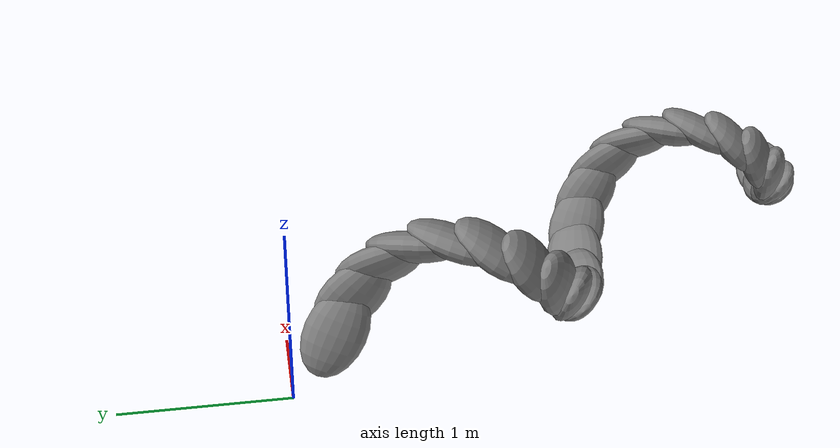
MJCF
<mujoco><compiler angle="radian"/><option timestep=".002" integrator="Euler" density="1.225" viscosity=".013" wind=".4 -.3 .2"><flag constraint="disable"/></option><worldbody><body pos=".15 -.07 .2" quat=".9 .1 -.2 .05"><joint axis="1 2 -3" pos=".1 0 -.05" armature=".03" damping=".2" stiffness=".4"/><inertial pos=".07 -.02 .11" mass="2.3" diaginertia=".21 .32 .43" quat=".8 .2 -.3 .1"/><geom type="ellipsoid" size=".1 .2 .3" fluidshape="ellipsoid" fluidcoef="1 .5 1.5 1 .7" pos=".12 -.2 .1" quat=".9 .1 .2 -.1"/><body pos=".15 -.07 .2" quat=".9 .1 -.2 .05"><joint axis="1 2 -3" pos=".1 0 -.05" armature=".03" damping=".2" stiffness=".4"/><inertial pos=".07 -.02 .11" mass="2.3" diaginertia=".21 .32 .43" quat=".8 .2 -.3 .1"/><geom type="ellipsoid" size=".1 .2 .3" fluidshape="ellipsoid" fluidcoef="1 .5 1.5 1 .7" pos=".12 -.2 .1" quat=".9 .1 .2 -.1"/><body pos=".15 -.07 .2" quat=".9 .1 -.2 .05"><joint axis="1 2 -3" pos=".1 0 -.05" armature=".03" damping=".2" stiffness=".4"/><inertial pos=".07 -.02 .11" mass="2.3" diaginertia=".21 .32 .43" quat=".8 .2 -.3 .1"/><geom type="ellipsoid" size=".1 .2 .3" fluidshape="ellipsoid" fluidcoef="1 .5 1.5 1 .7" pos=".12 -.2 .1" quat=".9 .1 .2 -.1"/><body pos=".15 -.07 .2" quat=".9 .1 -.2 .05"><joint axis="1 2 -3" pos=".1 0 -.05" armature=".03" damping=".2" stiffness=".4"/><inertial pos=".07 -.02 .11" mass="2.3" diaginertia=".21 .32 .43" quat=".8 .2 -.3 .1"/><geom type="ellipsoid" size=".1 .2 .3" fluidshape="ellipsoid" fluidcoef="1 .5 1.5 1 .7" pos=".12 -.2 .1" quat=".9 .1 .2 -.1"/><body pos=".15 -.07 .2" quat=".9 .1 -.2 .05"><joint axis="1 2 -3" pos=".1 0 -.05" armature=".03" damping=".2" stiffness=".4"/><inertial pos=".07 -.02 .11" mass="2.3" diaginertia=".21 .32 .43" quat=".8 .2 -.3 .1"/><geom type="ellipsoid" size=".1 .2 .3" fluidshape="ellipsoid" fluidcoef="1 .5 1.5 1 .7" pos=".12 -.2 .1" quat=".9 .1 .2 -.1"/><body pos=".15 -.07 .2" quat=".9 .1 -.2 .05"><joint axis="1 2 -3" pos=".1 0 -.05" armature=".03" damping=".2" stiffness=".4"/><inertial pos=".07 -.02 .11" mass="2.3" diaginertia=".21 .32 .43" quat=".8 .2 -.3 .1"/><geom type="ellipsoid" size=".1 .2 .3" fluidshape="ellipsoid" fluidcoef="1 .5 1.5 1 .7" pos=".12 -.2 .1" quat=".9 .1 .2 -.1"/><body pos=".15 -.07 .2" quat=".9 .1 -.2 .05"><joint axis="1 2 -3" pos=".1 0 -.05" armature=".03" damping=".2" stiffness=".4"/><inertial pos=".07 -.02 .11" mass="2.3" diaginertia=".21 .32 .43" quat=".8 .2 -.3 .1"/><geom type="ellipsoid" size=".1 .2 .3" fluidshape="ellipsoid" fluidcoef="1 .5 1.5 1 .7" pos=".12 -.2 .1" quat=".9 .1 .2 -.1"/><body pos=".15 -.07 .2" quat=".9 .1 -.2 .05"><joint axis="1 2 -3" pos=".1 0 -.05" armature=".03" damping=".2" stiffness=".4"/><inertial pos=".07 -.02 .11" mass="2.3" diaginertia=".21 .32 .43" quat=".8 .2 -.3 .1"/><geom type="ellipsoid" size=".1 .2 .3" fluidshape="ellipsoid" fluidcoef="1 .5 1.5 1 .7" pos=".12 -.2 .1" quat=".9 .1 .2 -.1"/><body pos=".15 -.07 .2" quat=".9 .1 -.2 .05"><joint axis="1 2 -3" pos=".1 0 -.05" armature=".03" damping=".2" stiffness=".4"/><inertial pos=".07 -.02 .11" mass="2.3" diaginertia=".21 .32 .43" quat=".8 .2 -.3 .1"/><geom type="ellipsoid" size=".1 .2 .3" fluidshape="ellipsoid" fluidcoef="1 .5 1.5 1 .7" pos=".12 -.2 .1" quat=".9 .1 .2 -.1"/><body pos=".15 -.07 .2" quat=".9 .1 -.2 .05"><joint axis="1 2 -3" pos=".1 0 -.05" armature=".03" damping=".2" stiffness=".4"/><inertial pos=".07 -.02 .11" mass="2.3" diaginertia=".21 .32 .43" quat=".8 .2 -.3 .1"/><geom type="ellipsoid" size=".1 .2 .3" fluidshape="ellipsoid" fluidcoef="1 .5 1.5 1 .7" pos=".12 -.2 .1" quat=".9 .1 .2 -.1"/><body pos=".15 -.07 .2" quat=".9 .1 -.2 .05"><joint axis="1 2 -3" pos=".1 0 -.05" armature=".03" damping=".2" stiffness=".4"/><inertial pos=".07 -.02 .11" mass="2.3" diaginertia=".21 .32 .43" quat=".8 .2 -.3 .1"/><geom type="ellipsoid" size=".1 .2 .3" fluidshape="ellipsoid" fluidcoef="1 .5 1.5 1 .7" pos=".12 -.2 .1" quat=".9 .1 .2 -.1"/><body pos=".15 -.07 .2" quat=".9 .1 -.2 .05"><joint axis="1 2 -3" pos=".1 0 -.05" armature=".03" damping=".2" stiffness=".4"/><inertial pos=".07 -.02 .11" mass="2.3" diaginertia=".21 .32 .43" quat=".8 .2 -.3 .1"/><geom type="ellipsoid" size=".1 .2 .3" fluidshape="ellipsoid" fluidcoef="1 .5 1.5 1 .7" pos=".12 -.2 .1" quat=".9 .1 .2 -.1"/><body pos=".15 -.07 .2" quat=".9 .1 -.2 .05"><joint axis="1 2 -3" pos=".1 0 -.05" armature=".03" damping=".2" stiffness=".4"/><inertial pos=".07 -.02 .11" mass="2.3" diaginertia=".21 .32 .43" quat=".8 .2 -.3 .1"/><geom type="ellipsoid" size=".1 .2 .3" fluidshape="ellipsoid" fluidcoef="1 .5 1.5 1 .7" pos=".12 -.2 .1" quat=".9 .1 .2 -.1"/><body pos=".15 -.07 .2" quat=".9 .1 -.2 .05"><joint axis="1 2 -3" pos=".1 0 -.05" armature=".03" damping=".2" stiffness=".4"/><inertial pos=".07 -.02 .11" mass="2.3" diaginertia=".21 .32 .43" quat=".8 .2 -.3 .1"/><geom type="ellipsoid" size=".1 .2 .3" fluidshape="ellipsoid" fluidcoef="1 .5 1.5 1 .7" pos=".12 -.2 .1" quat=".9 .1 .2 -.1"/><body pos=".15 -.07 .2" quat=".9 .1 -.2 .05"><joint axis="1 2 -3" pos=".1 0 -.05" armature=".03" damping=".2" stiffness=".4"/><inertial pos=".07 -.02 .11" mass="2.3" diaginertia=".21 .32 .43" quat=".8 .2 -.3 .1"/><geom type="ellipsoid" size=".1 .2 .3" fluidshape="ellipsoid" fluidcoef="1 .5 1.5 1 .7" pos=".12 -.2 .1" quat=".9 .1 .2 -.1"/><body pos=".15 -.07 .2" quat=".9 .1 -.2 .05"><joint axis="1 2 -3" pos=".1 0 -.05" armature=".03" damping=".2" stiffness=".4"/><inertial pos=".07 -.02 .11" mass="2.3" diaginertia=".21 .32 .43" quat=".8 .2 -.3 .1"/><geom type="ellipsoid" size=".1 .2 .3" fluidshape="ellipsoid" fluidcoef="1 .5 1.5 1 .7" pos=".12 -.2 .1" quat=".9 .1 .2 -.1"/><body pos=".15 -.07 .2" quat=".9 .1 -.2 .05"><joint axis="1 2 -3" pos=".1 0 -.05" armature=".03" damping=".2" stiffness=".4"/><inertial pos=".07 -.02 .11" mass="2.3" diaginertia=".21 .32 .43" quat=".8 .2 -.3 .1"/><geom type="ellipsoid" size=".1 .2 .3" fluidshape="ellipsoid" fluidcoef="1 .5 1.5 1 .7" pos=".12 -.2 .1" quat=".9 .1 .2 -.1"/><body pos=".15 -.07 .2" quat=".9 .1 -.2 .05"><joint axis="1 2 -3" pos=".1 0 -.05" armature=".03" damping=".2" stiffness=".4"/><inertial pos=".07 -.02 .11" mass="2.3" diaginertia=".21 .32 .43" quat=".8 .2 -.3 .1"/><geom type="ellipsoid" size=".1 .2 .3" fluidshape="ellipsoid" fluidcoef="1 .5 1.5 1 .7" pos=".12 -.2 .1" quat=".9 .1 .2 -.1"/><body pos=".15 -.07 .2" quat=".9 .1 -.2 .05"><joint axis="1 2 -3" pos=".1 0 -.05" armature=".03" damping=".2" stiffness=".4"/><inertial pos=".07 -.02 .11" mass="2.3" diaginertia=".21 .32 .43" quat=".8 .2 -.3 .1"/><geom type="ellipsoid" size=".1 .2 .3" fluidshape="ellipsoid" fluidcoef="1 .5 1.5 1 .7" pos=".12 -.2 .1" quat=".9 .1 .2 -.1"/><body pos=".15 -.07 .2" quat=".9 .1 -.2 .05"><joint axis="1 2 -3" pos=".1 0 -.05" armature=".03" damping=".2" stiffness=".4"/><inertial pos=".07 -.02 .11" mass="2.3" diaginertia=".21 .32 .43" quat=".8 .2 -.3 .1"/><geom type="ellipsoid" size=".1 .2 .3" fluidshape="ellipsoid" fluidcoef="1 .5 1.5 1 .7" pos=".12 -.2 .1" quat=".9 .1 .2 -.1"/><body pos=".15 -.07 .2" quat=".9 .1 -.2 .05"><joint axis="1 2 -3" pos=".1 0 -.05" armature=".03" damping=".2" stiffness=".4"/><inertial pos=".07 -.02 .11" mass="2.3" diaginertia=".21 .32 .43" quat=".8 .2 -.3 .1"/><geom type="ellipsoid" size=".1 .2 .3" fluidshape="ellipsoid" fluidcoef="1 .5 1.5 1 .7" pos=".12 -.2 .1" quat=".9 .1 .2 -.1"/><body pos=".15 -.07 .2" quat=".9 .1 -.2 .05"><joint axis="1 2 -3" pos=".1 0 -.05" armature=".03" damping=".2" stiffness=".4"/><inertial pos=".07 -.02 .11" mass="2.3" diaginertia=".21 .32 .43" quat=".8 .2 -.3 .1"/><geom type="ellipsoid" size=".1 .2 .3" fluidshape="ellipsoid" fluidcoef="1 .5 1.5 1 .7" pos=".12 -.2 .1" quat=".9 .1 .2 -.1"/><body pos=".15 -.07 .2" quat=".9 .1 -.2 .05"><joint axis="1 2 -3" pos=".1 0 -.05" armature=".03" damping=".2" stiffness=".4"/><inertial pos=".07 -.02 .11" mass="2.3" diaginertia=".21 .32 .43" quat=".8 .2 -.3 .1"/><geom type="ellipsoid" size=".1 .2 .3" fluidshape="ellipsoid" fluidcoef="1 .5 1.5 1 .7" pos=".12 -.2 .1" quat=".9 .1 .2 -.1"/><body pos=".15 -.07 .2" quat=".9 .1 -.2 .05"><joint axis="1 2 -3" pos=".1 0 -.05" armature=".03" damping=".2" stiffness=".4"/><inertial pos=".07 -.02 .11" mass="2.3" diaginertia=".21 .32 .43" quat=".8 .2 -.3 .1"/><geom type="ellipsoid" size=".1 .2 .3" fluidshape="ellipsoid" fluidcoef="1 .5 1.5 1 .7" pos=".12 -.2 .1" quat=".9 .1 .2 -.1"/></body></body></body></body></body></body></body></body></body></body></body></body></body></body></body></body></body></body></body></body></body></body></body></body></worldbody></mujoco>
